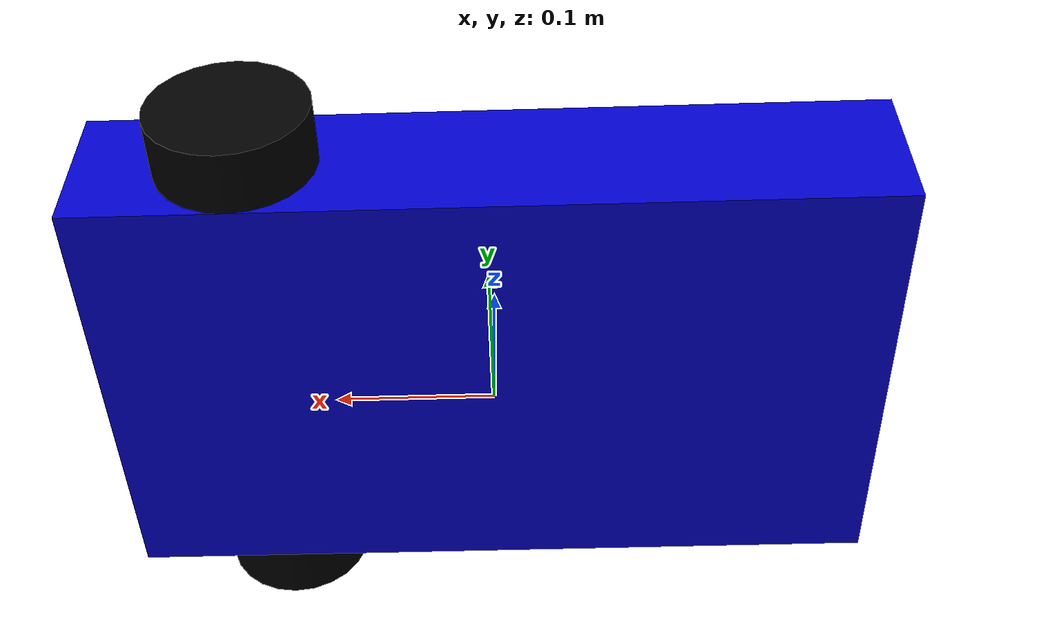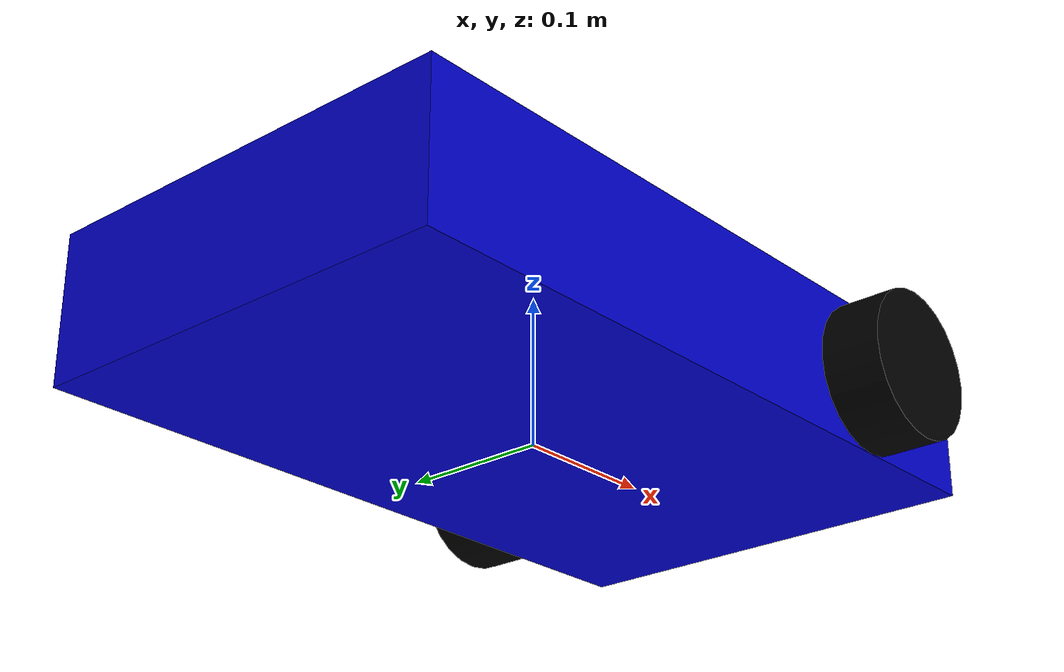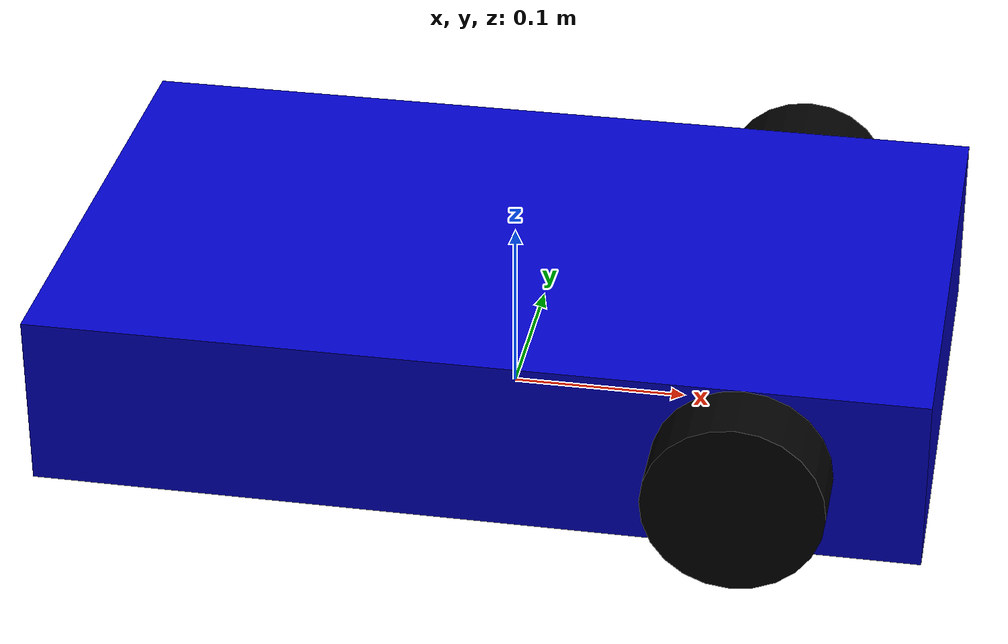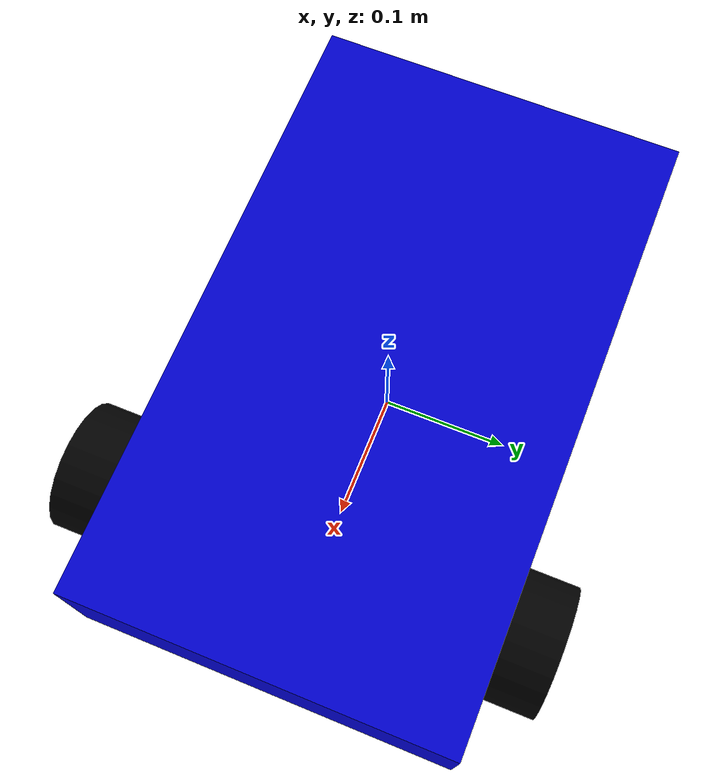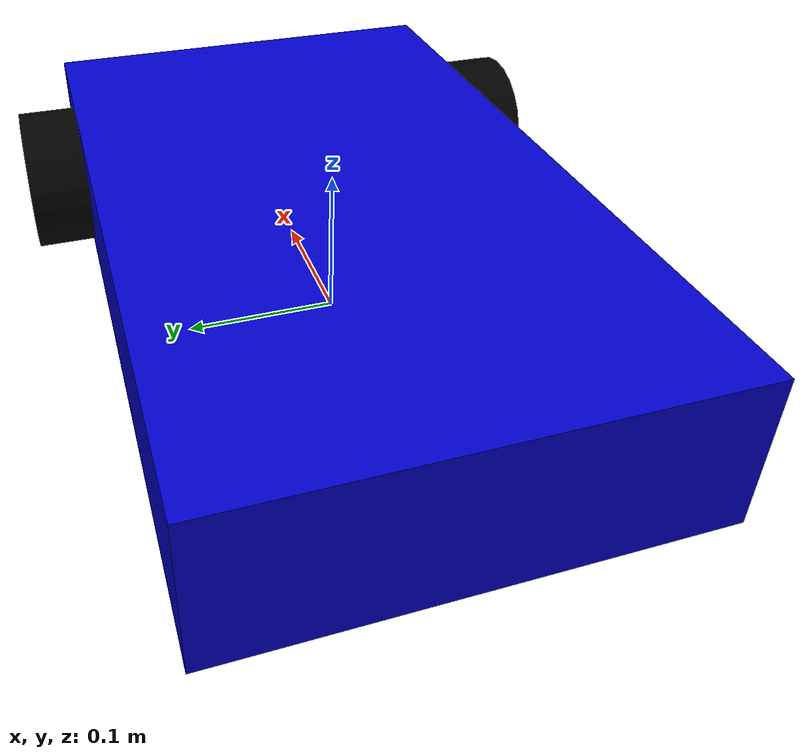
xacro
<?xml version="1.0"?>
<robot name="my_robot" xmlns:xacro="http://www.ros.org/wiki/xacro">

  <material name="blue">
    <color rgba="0.0 0.0 0.8 1.0"/>
  </material>

  <material name="black">
    <color rgba="0.0 0.0 0.0 1.0"/>
  </material>

  <material name="white">
    <color rgba="1.0 1.0 1.0 1.0"/>
  </material>

  <xacro:macro name="box_inertia" params="m x y z">
    <inertial>
      <mass value="${m}"/>
      <inertia ixx="${(m/12) * (y*y + z*z)}" ixy="0" ixz="0"
               iyy="${(m/12) * (x*x + z*z)}" iyz="0"
               izz="${(m/12) * (x*x + y*y)}" />
    </inertial>
  </xacro:macro>

  <xacro:macro name="cylinder_inertia" params="m r h">
    <inertial>
      <mass value="${m}"/>
      <inertia ixx="${(m/12) * (3*r*r + h*h)}" ixy="0" ixz="0"
               iyy="${(m/12) * (3*r*r + h*h)}" iyz="0"
               izz="${(m/2) * (r*r)}" />
    </inertial>
  </xacro:macro>

  <xacro:macro name="sphere_inertia" params="m r">
    <inertial>
      <mass value="${m}"/>
      <inertia ixx="${(2/5) * m * (r*r)}" ixy="0" ixz="0"
               iyy="${(2/5) * m * (r*r)}" iyz="0"
               izz="${(2/5) * m * (r*r)}" />
    </inertial>
  </xacro:macro>

  <link name="base_footprint"/>

  <joint name="base_joint" type="fixed">
    <parent link="base_footprint"/>
    <child link="base_link"/>
    <origin xyz="0.0 0.0 0.0" rpy="0 0 0"/>
  </joint>

  <link name="base_link">
  </link>

  <link name="chassis">
    <visual>
      <geometry>
        <box size="0.5 0.3 0.1"/>
      </geometry>
      <material name="blue"/>
      <origin xyz="0 0 0.05"/>
    </visual>
    <collision>
      <geometry>
        <box size="0.5 0.3 0.1"/>
      </geometry>
      <origin xyz="0 0 0.05"/>
    </collision>
    <xacro:box_inertia m="5.0" x="0.5" y="0.3" z="0.1"/>
  </link>

  <joint name="base_to_chassis" type="fixed">
    <parent link="base_link"/>
    <child link="chassis"/>
    <origin xyz="0 0 0"/>
  </joint>

  <link name="left_wheel">
    <visual>
      <geometry>
        <cylinder radius="0.05" length="0.04"/>
      </geometry>
      <material name="black"/>
      <origin rpy="1.5708 0 0"/>
    </visual>
    <collision>
      <geometry>
        <cylinder radius="0.05" length="0.04"/>
      </geometry>
      <origin rpy="1.5708 0 0"/>
    </collision>
    <xacro:cylinder_inertia m="1.0" r="0.05" h="0.04"/>
  </link>

  <joint name="left_wheel_joint" type="continuous">
    <parent link="chassis"/>
    <child link="left_wheel"/>
    <origin xyz="0.15 0.17 0.05" rpy="0 0 0"/>
    <axis xyz="0 1 0"/>
  </joint>

  <link name="right_wheel">
    <visual>
      <geometry>
        <cylinder radius="0.05" length="0.04"/>
      </geometry>
      <material name="black"/>
      <origin rpy="1.5708 0 0"/>
    </visual>
    <collision>
      <geometry>
        <cylinder radius="0.05" length="0.04"/>
      </geometry>
      <origin rpy="1.5708 0 0"/>
    </collision>
    <xacro:cylinder_inertia m="1.0" r="0.05" h="0.04"/>
  </link>

  <joint name="right_wheel_joint" type="continuous">
    <parent link="chassis"/>
    <child link="right_wheel"/>
    <origin xyz="0.15 -0.17 0.05" rpy="0 0 0"/>
    <axis xyz="0 1 0"/>
  </joint>

  <link name="caster_wheel">
    <visual>
      <geometry>
        <sphere radius="0.05"/>
      </geometry>
      <material name="white"/>
    </visual>
    <collision>
      <geometry>
        <sphere radius="0.05"/>
      </geometry>
    </collision>
    <xacro:sphere_inertia m="0.5" r="0.05"/>
  </link>

  <joint name="caster_joint" type="fixed">
    <parent link="chassis"/>
    <child link="caster_wheel"/>
    <origin xyz="-0.15 0 0.05"/>
  </joint>

  <gazebo reference="chassis">
    <material>Gazebo/Blue</material>
  </gazebo>
  <gazebo reference="left_wheel">
    <material>Gazebo/Black</material>
  </gazebo>
  <gazebo reference="right_wheel">
    <material>Gazebo/Black</material>
  </gazebo>
  <gazebo reference="caster_wheel">
    <material>Gazebo/White</material>
    <mu1>0.001</mu1>
    <mu2>0.001</mu2>
  </gazebo>

  <gazebo>
    <plugin name="diff_drive" filename="libgazebo_ros_diff_drive.so">

      <left_joint>left_wheel_joint</left_joint>
      <right_joint>right_wheel_joint</right_joint>
      <wheel_separation>0.34</wheel_separation>
      <wheel_diameter>0.1</wheel_diameter>

      <max_wheel_torque>200</max_wheel_torque>
      <max_wheel_acceleration>10.0</max_wheel_acceleration>

      <odometry_frame>odom</odometry_frame>
      <robot_base_frame>base_footprint</robot_base_frame>

      <publish_odom>true</publish_odom>
      <publish_odom_tf>true</publish_odom_tf>
      <publish_wheel_tf>true</publish_wheel_tf>

    </plugin>
  </gazebo>

  <link name="lidar_link">
    <visual>
      <geometry>
        <cylinder radius="0.05" length="0.04"/>
      </geometry>
      <material name="red">
        <color rgba="1.0 0.0 0.0 1.0"/>
      </material>
    </visual>
    <collision>
      <geometry>
        <cylinder radius="0.05" length="0.04"/>
      </geometry>
    </collision>
    <xacro:cylinder_inertia m="0.1" r="0.05" h="0.04"/>
  </link>

  <joint name="lidar_joint" type="fixed">
    <parent link="chassis"/>
    <child link="lidar_link"/>
    <origin xyz="0.0 0 0.07" rpy="0 0 0"/>
  </joint>

  <gazebo reference="lidar_link">
    <material>Gazebo/Red</material>
    <sensor name="lidar" type="ray">
      <pose>0 0 0 0 0 0</pose>
      <visualize>true</visualize>
      <update_rate>10</update_rate>
      <ray>
        <scan>
          <horizontal>
            <samples>360</samples>
            <resolution>1</resolution>
            <min_angle>-3.14</min_angle>
            <max_angle>3.14</max_angle>
          </horizontal>
        </scan>
        <range>
          <min>0.3</min>
          <max>12</max>
        </range>
      </ray>
      <plugin name="laser_controller" filename="libgazebo_ros_ray_sensor.so">
        <ros>
          <argument>~/out:=scan</argument>
        </ros>
        <output_type>sensor_msgs/LaserScan</output_type>
        <frame_name>lidar_link</frame_name>
      </plugin>
    </sensor>
  </gazebo>

</robot>
